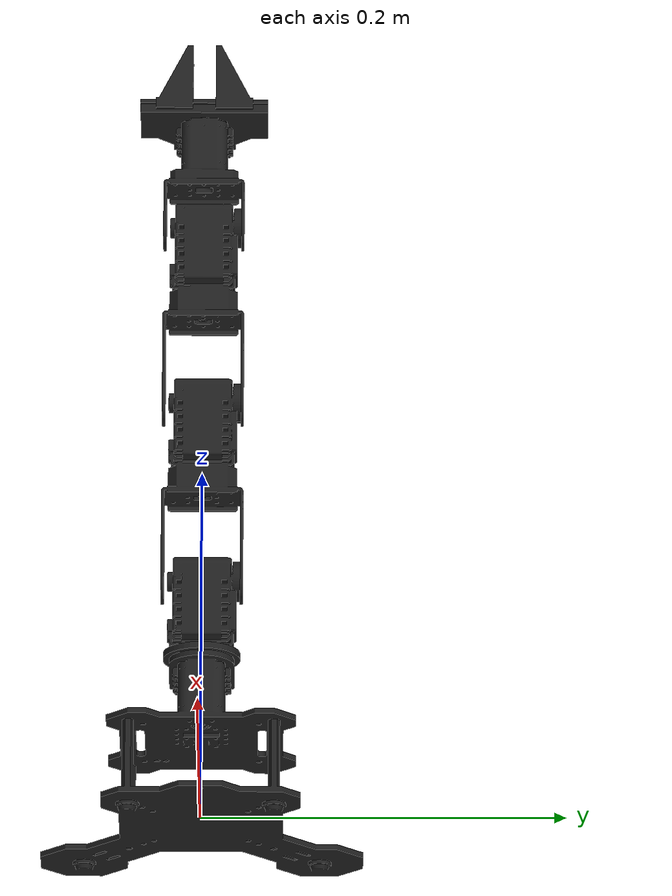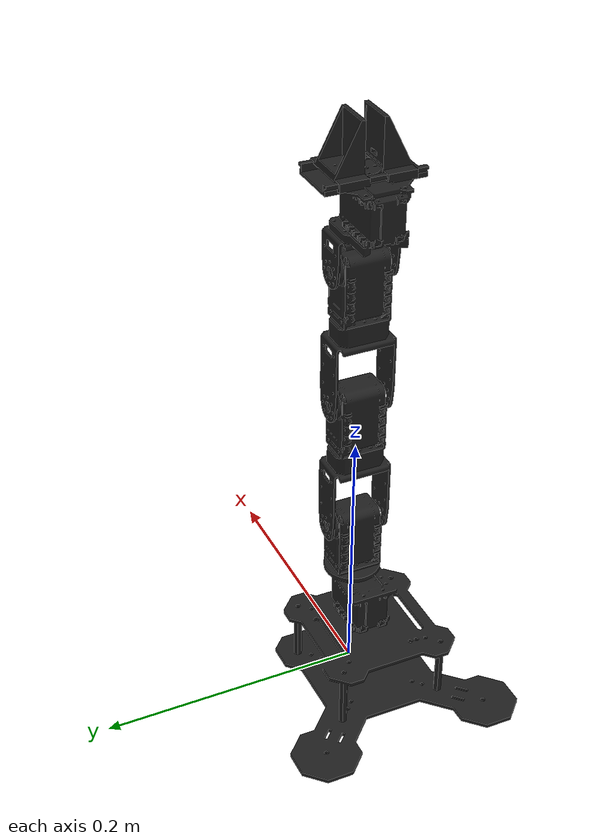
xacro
<?xml version="1.0" ?>
<!--
  UNIVERSIDAD NACIONAL DE COLOMBIA
  DEPARTAMENTO DE ING. MECANICA Y MECATRONICA
  LUIS MIGUEL MARTINEZ LARGO
  -->

<robot name="Phantom" xmlns:xacro="http://www.ros.org/wiki/xacro">

  <!-- Include-->
  <xacro:include filename="$(find Phantom_Gazebo)/urdf/Link__Joint.xacro" />
  <xacro:include filename="$(find Phantom_Gazebo)/urdf/Phantom_parameters.xacro" />
  <!-- END - Include -->
  <property name="pi" value="3.141592654" />
  <property name="Hbase" value="0.095" />
  <property name="L1" value="0.04" />
  <property name="L2" value="0.105" />
  <property name="L3" value="0.105" />
  <property name="LTool" value="0.07" />
  <property name="MFinger" value="0.02" /> <!-- Desplazamiento lateral -->
  <property name="LFinger" value="0.037" /> <!-- Desplazamiento vertical -->
  <!-- Robot description -->

  <link name="world"/>  <!-- Base link from Gazebo-->

  <joint name="fixed" type="fixed"> <!-- Joint to fix the base so it does not move-->
    <parent link="world"/>
    <child link="${link_00_name}"/>
  </joint>

<!-- Link Base -->
  <m_link_mesh name="${link_00_name}"
    origin_xyz="0 0 0"
    origin_rpy="0 0 0"
    meshfile="package://Phantom_Gazebo/meshes/PincherBase.dae"
    mass="1.024"
    ixx="0.001" iyy="0.002"  izz="0.001"
    ixy="0"     iyz="0"
    ixz="0"

  />

  <m_joint name="${joint_01_name}"
    type="revolute"
    axis_xyz="0 0 1"
    origin_rpy="0 0 0"
    origin_xyz="0 0 ${Hbase}"
    parent="${link_00_name}" child="${link_01_name}"
    limit_e="100" limit_l="-3.14" limit_u="3.14" limit_v="0.5"
  />

<!-- Link1 -->
  <m_link_mesh name="${link_01_name}"
    origin_rpy="0 0 0"
    origin_xyz="0 0 0"
    meshfile="package://Phantom_Gazebo/meshes/PincherLink1.dae"
    mass="0.118"    iyy="0.121162"     izz="0.019109"
    ixx="0.126826"  iyz="-0.003744"
    ixy="0"
    ixz="0"

  />

  <m_joint name="${joint_02_name}"
    type="revolute"
    axis_xyz="0 0 1"
    origin_rpy=" ${pi/2} -${pi/2} 0 "
    origin_xyz="0 0 ${L1}"
    parent="${link_01_name}" child="${link_02_name}"
    limit_e="100" limit_l="-3.14" limit_u="3.14" limit_v="0.5"
  />

<!-- Link2 -->
  <m_link_mesh name="${link_02_name}"
    origin_rpy="-${pi/2}  0  -${pi/2}"
    origin_xyz="0 0 0"
    meshfile="package://Phantom_Gazebo/meshes/PincherLink2.dae"
    mass="0.162"
    ixx="1.118749"     iyy="1.176055"      izz="0.031295"
    ixy="0" 	       iyz="-0.011695"
    ixz="0.000321"

  />

  <m_joint name="${joint_03_name}"
    type="revolute"
    axis_xyz="0 0 1"
    origin_rpy="0 0 0"
    origin_xyz="${L2} 0 0"
    parent="${link_02_name}" child="${link_03_name}"
    limit_e="100" limit_l="-3.14" limit_u="3.14" limit_v="0.5"
  />

<!-- Link3 -->
  <m_link_mesh name="${link_03_name}"
    origin_rpy="-${pi/2}  0  -${pi/2}"
    origin_xyz="0 0 0"
    meshfile="package://Phantom_Gazebo/meshes/PincherLink3.dae"
    mass="0.162"
    ixx="1.118749"     iyy="1.176055"      izz="0.031295"
    ixy="0" 	       iyz="-0.011695"
    ixz="0.000321"
  />

  <m_joint name="${joint_04_name}"
    type="revolute"
    axis_xyz="0 0 1"
    origin_rpy="0 0 0"
    origin_xyz="0.105 0 0"
    parent="${link_03_name}" child="${link_04_name}"
    limit_e="100" limit_l="-3.14" limit_u="3.14" limit_v="0.5"
  />

<!-- Link Tool -->
  <m_link_mesh name="${link_04_name}"
    origin_rpy="-${pi/2}  0  -${pi/2}"
    origin_xyz="0 0 0"
    meshfile="package://Phantom_Gazebo/meshes/PincherTool.dae"
    mass="0.160"
    ixx="0.411970"      iyy="0.438310"    izz="0.068997"
    ixy="0.000077" 	iyz="-0.000186"
    ixz="0.075498"

  />

   <m_joint name="${joint_05_name}"
    type="prismatic"
    origin_rpy="0 0 0"
    origin_xyz="${LTool} 0 0"
    parent="${link_04_name}" child="${link_05_name}"
    axis_xyz ="0 0 1"
    limit_e="100" limit_l="0" limit_u="0.03" limit_v="0.5"
  />
    <m_joint name="${joint_06_name}"
    type="prismatic"
    origin_rpy="${pi/2}  0  ${pi/2}"
    origin_xyz="${LTool+LFinger} 0 0"
    parent="${link_04_name}" child="${link_06_name}"
    axis_xyz ="0 -1 0"
    limit_e="100" limit_l="0" limit_u="+0.03" limit_v="0.5"

  />

<!-- Link Finger -->
   <m_link_mesh name="${link_05_name}"
    origin_rpy="-${pi/2}  0  -${pi/2}"
    origin_xyz="0 0 ${MFinger}"
    meshfile="package://Phantom_Gazebo/meshes/PincheFinger.dae"
    mass="0.018"
    ixx="0.005774" ixy="0" ixz="0"
    iyy="0.006755" iyz="-0.001932"
    izz="0.003631"
  />

   <m_link_mesh name="${link_06_name}"
    origin_rpy="0  0  0"
    origin_xyz="0 -${MFinger} -${LFinger}"
    meshfile="package://Phantom_Gazebo/meshes/PincheFinger.dae"
    mass="0.018"
    ixx="0.005774" ixy="0" ixz="0"
    iyy="0.006755" iyz="-0.001932"
    izz="0.003631"
  />

<!-- END - Robot description -->
<gazebo>
	<plugin name="gazebo_ros_control" filename="libgazebo_ros_control.so">
	</plugin>
	<robotNamespace>/Phantom_sim</robotNamespace>
	<robotSimType>gazebo_ros_control/DefaultRobotHWSim</robotSimType>
	<legacyModeNS>false</legacyModeNS>
</gazebo>
<gazebo reference="${link_00_name}">
    <sensor type="camera" name="camera1">
    <pose frame=''>0 0 +1.2 0 +1.5707 0</pose>
        <camera>
            <horizontal_fov>1.047</horizontal_fov>
            <image>
              <width>800</width>
              <height>600</height>
            </image>
            <clip>
              <near>0.1</near>
              <far>100</far>
            </clip>
        </camera>
          <always_on>1</always_on>
          <update_rate>30</update_rate>
          <visualize>true</visualize>
      <plugin name="camera_controller" filename="libgazebo_ros_camera.so">
                <alwaysOn>true</alwaysOn>
                <updateRate>0.0</updateRate>
                <cameraName>/mybot/camera</cameraName>
                <imageTopicName>image_raw</imageTopicName>
                <cameraInfoTopicName>camera_info</cameraInfoTopicName>
                <frameName>camera</frameName>
                <hackBaseline>0.07</hackBaseline>
                <distortionK1>0.0</distortionK1>
                <distortionK2>0.0</distortionK2>
                <distortionK3>0.0</distortionK3>
                <distortionT1>0.0</distortionT1>
                <distortionT2>0.0</distortionT2>
      </plugin>
    </sensor>
</gazebo>
</robot>

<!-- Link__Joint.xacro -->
<robot xmlns:xacro="http://www.ros.org/wiki/xacro">

<!--    LUIS MIGUEL MARTINEZ LARGO
	MACROS PARA CADA ELEMENTO-->

<xacro:macro name="m_link_mesh" params="name origin_xyz origin_rpy meshfile mass ixx ixy ixz iyy iyz izz">
    <link name="${name}">
      <inertial>
        <mass value="${mass}" />
        <origin rpy="${origin_rpy}" xyz="${origin_xyz}" />
        <inertia ixx="${ixx}" ixy="${ixy}" ixz="${ixz}" iyy="${iyy}" iyz="${iyz}" izz="${izz}" />
      </inertial>
      <collision>
        <origin rpy="${origin_rpy}" xyz="${origin_xyz}" />
        <geometry>
          <mesh filename="${meshfile}"/>
        </geometry>
      </collision>
      <visual>
        <origin rpy="${origin_rpy}" xyz="${origin_xyz}" />
        <geometry>
          <mesh filename="${meshfile}"/>
        </geometry>
        <material name="light_black"/>
      </visual>
    </link>
 </xacro:macro>

<xacro:macro name="m_joint" params="name type axis_xyz origin_rpy origin_xyz parent child limit_e limit_l limit_u limit_v">
    <joint name="${name}" type="${type}">
      <axis xyz="${axis_xyz}" />
      <limit effort="${limit_e}" lower="${limit_l}" upper="${limit_u}" velocity="${limit_v}" />
      <origin rpy="${origin_rpy}" xyz="${origin_xyz}" />
      <parent link="${parent}" />
      <child link="${child}" />
    </joint>
     <transmission name="trans_${name}">
      <type>transmission_interface/SimpleTransmission</type>
      <joint name="${name}">
  <hardwareInterface>EffortJointInterface</hardwareInterface>
      </joint>
      <actuator name="motor_${name}">
  <hardwareInterface>EffortJointInterface</hardwareInterface>
  <mechanicalReduction>1</mechanicalReduction>
      </actuator>
    </transmission>

 </xacro:macro>

<xacro:macro name="create_noa" params="name origin_rpy origin_xyz parent">
  <link name="${name}">
    <visual>
        <origin rpy="0 0 0" xyz="0 0 0"/>
    </visual>
  </link>
  <joint name="Tool_${name}" type="fixed">
    <origin rpy="${origin_rpy}" xyz="${origin_xyz}"/>
    <parent link="${parent}"/>
    <child link="${name}"/>
  </joint>
 </xacro:macro>

</robot>

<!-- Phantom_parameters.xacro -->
<robot xmlns:xacro="http://www.ros.org/wiki/xacro">

 <xacro:property name="link_00_name" value="base_link" />
 <xacro:property name="link_01_name" value="link_01" />
 <xacro:property name="link_02_name" value="link_02" />
 <xacro:property name="link_03_name" value="link_03" />
 <xacro:property name="link_04_name" value="tool_link" />
 <xacro:property name="link_05_name" value="finger_1" />
 <xacro:property name="link_06_name" value="finger_2" />
 <xacro:property name="joint_01_name" value="joint_1" />
 <xacro:property name="joint_02_name" value="joint_2" />
 <xacro:property name="joint_03_name" value="joint_3" />
 <xacro:property name="joint_04_name" value="tool_link" />
 <xacro:property name="joint_05_name" value="finger" />
 <xacro:property name="joint_06_name" value="noa" />
</robot>
